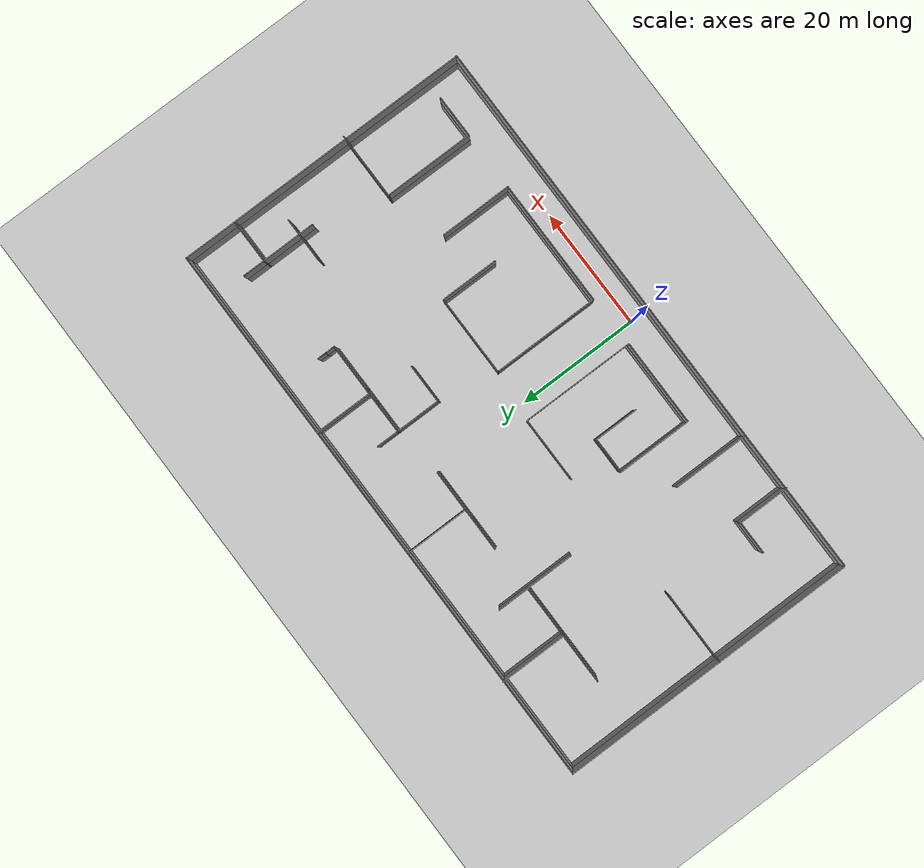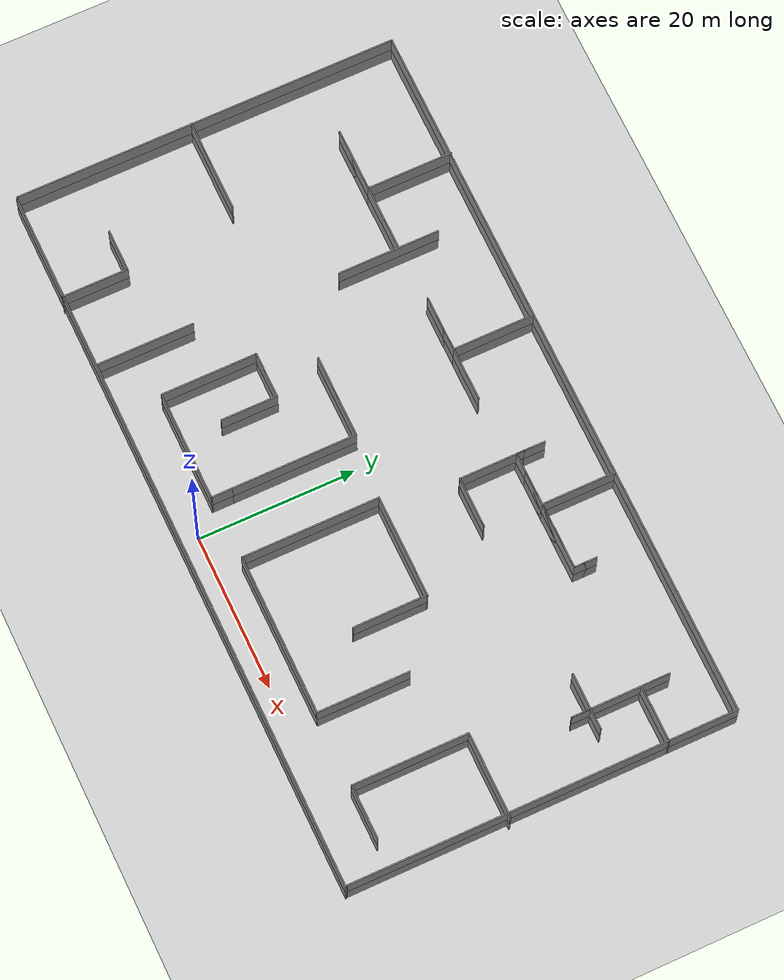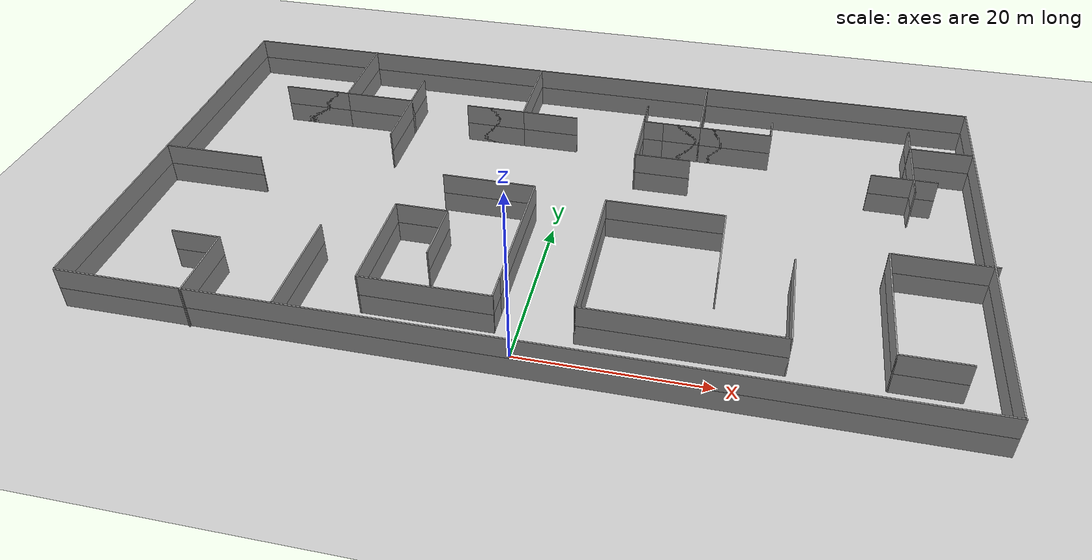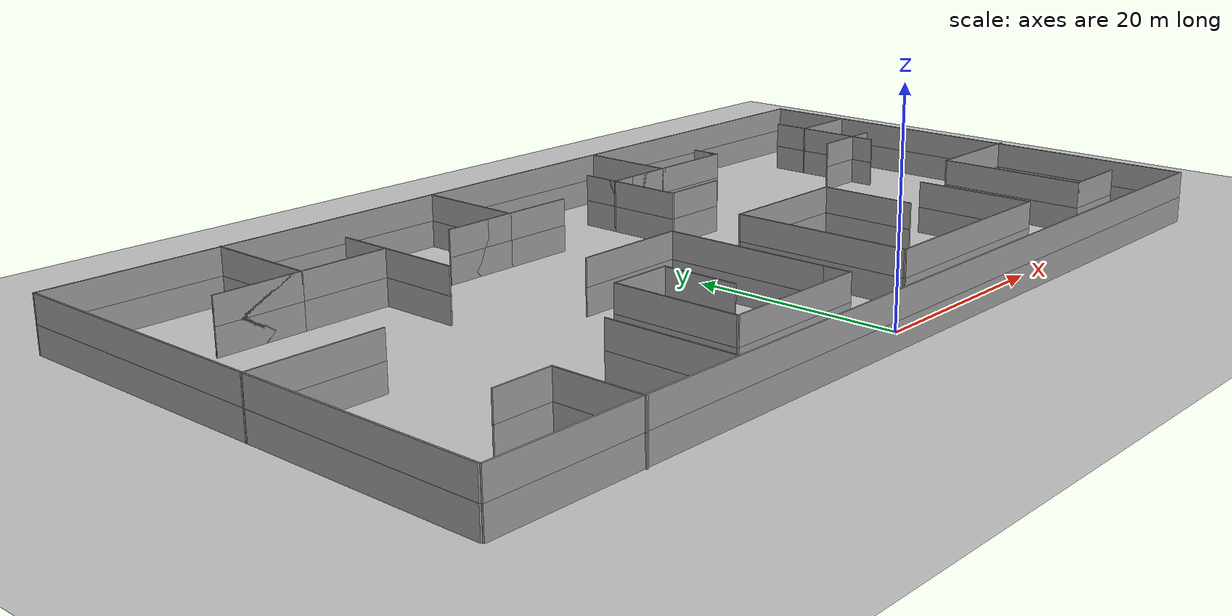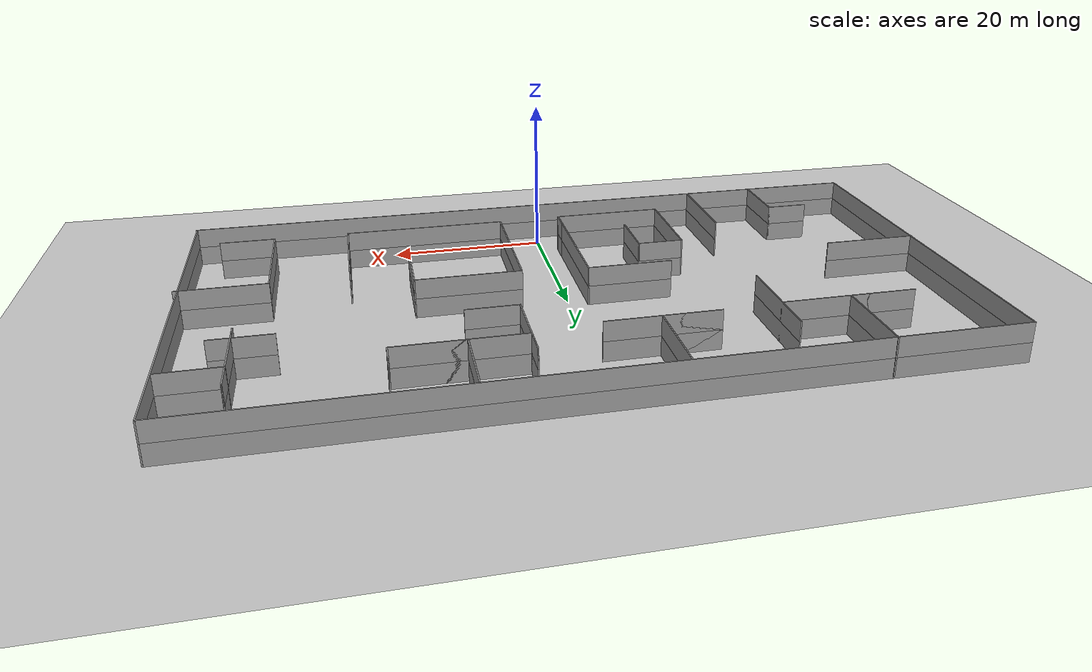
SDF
<sdf version="1.6">
 <world name="default">
  <light name="sun" type="directional">
   <pose>0 0 10 0 -0 0</pose>
   <diffuse>0.8 0.8 0.8 1</diffuse>
   <specular>0.2 0.2 0.2 1</specular>
   <attenuation>
    <range>1000</range>
    <constant>0.9</constant>
    <linear>0.01</linear>
    <quadratic>0.001</quadratic>
   </attenuation>
   <direction>-0.5 0.1 -0.9</direction>
  </light>
  <model name="ground_plane">
   <static>1</static>
   <link name="link">
    <collision name="collision">
     <geometry><plane><normal>0 0 1</normal><size>100 100</size></plane></geometry>
     <surface><friction><ode><mu>100</mu><mu2>50</mu2></ode></friction></surface>
    </collision>
    <visual name="visual">
     <cast_shadows>0</cast_shadows>
     <geometry><plane><normal>0 0 1</normal><size>100 100</size></plane></geometry>
     <material>
      <script><uri>file://media/materials/scripts/gazebo.material</uri><name>Gazebo/Grey</name></script>
     </material>
    </visual>
   </link>
  </model>
  <gravity>0 0 -9.8</gravity>
  <magnetic_field>6e-06 2.3e-05 -4.2e-05</magnetic_field>
  <atmosphere type="adiabatic"/>
  <physics name="default_physics" default="0" type="ode">
   <max_step_size>0.001</max_step_size>
   <real_time_factor>1</real_time_factor>
   <real_time_update_rate>1000</real_time_update_rate>
  </physics>
  <scene><ambient>0.4 0.4 0.4 1</ambient><background>0.7 0.7 0.7 1</background><shadows>1</shadows></scene>
  <audio><device>default</device></audio>
  <spherical_coordinates>
   <surface_model>EARTH_WGS84</surface_model>
   <latitude_deg>0</latitude_deg>
   <longitude_deg>0</longitude_deg>
   <elevation>0</elevation>
   <heading_deg>0</heading_deg>
  </spherical_coordinates>
  <model name="PaperTestRoom">
   <pose>0 22 0 0 -0 0</pose>
   <link name="Wall_10">
    <collision name="Wall_10_Collision">
     <geometry><box><size>11 0.15 2.5</size></box></geometry>
     <pose>0 0 1.25 0 -0 0</pose>
    </collision>
    <visual name="Wall_10_Visual">
     <pose>0 0 1.25 0 -0 0</pose>
     <geometry><box><size>11 0.15 2.5</size></box></geometry>
     <material>
      <script><uri>file://media/materials/scripts/gazebo.material</uri><name>Gazebo/Grey</name></script>
      <ambient>1 1 1 1</ambient>
     </material>
     <meta><layer>0</layer></meta>
    </visual>
    <pose>-30.1932 19.2437 0 0 -0 -1.5708</pose>
   </link>
   <link name="Wall_11">
    <collision name="Wall_11_Collision">
     <geometry><box><size>8.25 0.15 2.5</size></box></geometry>
     <pose>0 0 1.25 0 -0 0</pose>
    </collision>
    <visual name="Wall_11_Visual">
     <pose>0 0 1.25 0 -0 0</pose>
     <geometry><box><size>8.25 0.15 2.5</size></box></geometry>
     <material>
      <script><uri>file://media/materials/scripts/gazebo.material</uri><name>Gazebo/Grey</name></script>
      <ambient>1 1 1 1</ambient>
     </material>
     <meta><layer>0</layer></meta>
    </visual>
    <pose>-34.2432 13.8187 0 0 -0 3.14159</pose>
   </link>
   <link name="Wall_12">
    <collision name="Wall_12_Collision">
     <geometry><box><size>16.75 0.15 2.5</size></box></geometry>
     <pose>0 0 1.25 0 -0 0</pose>
    </collision>
    <visual name="Wall_12_Visual">
     <pose>0 0 1.25 0 -0 0</pose>
     <geometry><box><size>16.75 0.15 2.5</size></box></geometry>
     <material>
      <script><uri>file://media/materials/scripts/gazebo.material</uri><name>Gazebo/Grey</name></script>
      <ambient>1 1 1 1</ambient>
     </material>
     <meta><layer>0</layer></meta>
    </visual>
    <pose>-29.9932 13.8187 0 0 -0 0</pose>
   </link>
   <link name="Wall_13">
    <collision name="Wall_13_Collision">
     <geometry><box><size>5.25 0.15 2.5</size></box></geometry>
     <pose>0 0 1.25 0 -0 0</pose>
    </collision>
    <visual name="Wall_13_Visual">
     <pose>0 0 1.25 0 -0 0</pose>
     <geometry><box><size>5.25 0.15 2.5</size></box></geometry>
     <material>
      <script><uri>file://media/materials/scripts/gazebo.material</uri><name>Gazebo/Grey</name></script>
      <ambient>1 1 1 1</ambient>
     </material>
     <meta><layer>0</layer></meta>
    </visual>
    <pose>-21.6932 16.3687 0 0 -0 1.5708</pose>
   </link>
   <link name="Wall_14">
    <collision name="Wall_14_Collision">
     <geometry><box><size>13 0.15 2.5</size></box></geometry>
     <pose>0 0 1.25 0 -0 0</pose>
    </collision>
    <visual name="Wall_14_Visual">
     <pose>0 0 1.25 0 -0 0</pose>
     <geometry><box><size>13 0.15 2.5</size></box></geometry>
     <material>
      <script><uri>file://media/materials/scripts/gazebo.material</uri><name>Gazebo/Grey</name></script>
      <ambient>1 1 1 1</ambient>
     </material>
     <meta><layer>0</layer></meta>
    </visual>
    <pose>-21.6932 12.4938 0 0 -0 -1.5708</pose>
   </link>
   <link name="Wall_16">
    <collision name="Wall_16_Collision">
     <geometry><box><size>12 0.15 2.5</size></box></geometry>
     <pose>0 0 1.25 0 -0 0</pose>
    </collision>
    <visual name="Wall_16_Visual">
     <pose>0 0 1.25 0 -0 0</pose>
     <geometry><box><size>12 0.15 2.5</size></box></geometry>
     <material>
      <script><uri>file://media/materials/scripts/gazebo.material</uri><name>Gazebo/Grey</name></script>
      <ambient>1 1 1 1</ambient>
     </material>
     <meta><layer>0</layer></meta>
    </visual>
    <pose>-40.777 -1.80235 0 0 -0 0</pose>
   </link>
   <link name="Wall_18">
    <collision name="Wall_18_Collision">
     <geometry><box><size>5.5 0.15 2.5</size></box></geometry>
     <pose>0 0 1.25 0 -0 0</pose>
    </collision>
    <visual name="Wall_18_Visual">
     <pose>0 0 1.25 0 -0 0</pose>
     <geometry><box><size>5.5 0.15 2.5</size></box></geometry>
     <material>
      <script><uri>file://media/materials/scripts/gazebo.material</uri><name>Gazebo/Grey</name></script>
      <ambient>1 1 1 1</ambient>
     </material>
     <meta><layer>0</layer></meta>
    </visual>
    <pose>-35.3456 -16.3188 0 0 -0 0</pose>
   </link>
   <link name="Wall_19">
    <collision name="Wall_19_Collision">
     <geometry><box><size>8.5 0.15 2.5</size></box></geometry>
     <pose>0 0 1.25 0 -0 0</pose>
    </collision>
    <visual name="Wall_19_Visual">
     <pose>0 0 1.25 0 -0 0</pose>
     <geometry><box><size>8.5 0.15 2.5</size></box></geometry>
     <material>
      <script><uri>file://media/materials/scripts/gazebo.material</uri><name>Gazebo/Grey</name></script>
      <ambient>1 1 1 1</ambient>
     </material>
     <meta><layer>0</layer></meta>
    </visual>
    <pose>-32.6706 -20.4938 0 0 -0 -1.5708</pose>
   </link>
   <link name="Wall_21">
    <collision name="Wall_21_Collision">
     <geometry><box><size>12.25 0.15 2.5</size></box></geometry>
     <pose>0 0 1.25 0 -0 0</pose>
    </collision>
    <visual name="Wall_21_Visual">
     <pose>0 0 1.25 0 -0 0</pose>
     <geometry><box><size>12.25 0.15 2.5</size></box></geometry>
     <material>
      <script><uri>file://media/materials/scripts/gazebo.material</uri><name>Gazebo/Grey</name></script>
      <ambient>1 1 1 1</ambient>
     </material>
     <meta><layer>0</layer></meta>
    </visual>
    <pose>-23.0773 -18.2415 0 0 -0 -1.5708</pose>
   </link>
   <link name="Wall_23">
    <collision name="Wall_23_Collision">
     <geometry><box><size>10.75 0.15 2.5</size></box></geometry>
     <pose>0 0 1.25 0 -0 0</pose>
    </collision>
    <visual name="Wall_23_Visual">
     <pose>0 0 1.25 0 -0 0</pose>
     <geometry><box><size>10.75 0.15 2.5</size></box></geometry>
     <material>
      <script><uri>file://media/materials/scripts/gazebo.material</uri><name>Gazebo/Grey</name></script>
      <ambient>1 1 1 1</ambient>
     </material>
     <meta><layer>0</layer></meta>
    </visual>
    <pose>-7.67272 -0.663804 0 0 -0 0</pose>
   </link>
   <link name="Wall_24">
    <collision name="Wall_24_Collision">
     <geometry><box><size>16 0.15 2.5</size></box></geometry>
     <pose>0 0 1.25 0 -0 0</pose>
    </collision>
    <visual name="Wall_24_Visual">
     <pose>0 0 1.25 0 -0 0</pose>
     <geometry><box><size>16 0.15 2.5</size></box></geometry>
     <material>
      <script><uri>file://media/materials/scripts/gazebo.material</uri><name>Gazebo/Grey</name></script>
      <ambient>1 1 1 1</ambient>
     </material>
     <meta><layer>0</layer></meta>
    </visual>
    <pose>-2.37272 -8.5888 0 0 -0 -1.5708</pose>
   </link>
   <link name="Wall_25">
    <collision name="Wall_25_Collision">
     <geometry><box><size>2.75 0.15 2.5</size></box></geometry>
     <pose>0 0 1.25 0 -0 0</pose>
    </collision>
    <visual name="Wall_25_Visual">
     <pose>0 0 1.25 0 -0 0</pose>
     <geometry><box><size>2.75 0.15 2.5</size></box></geometry>
     <material>
      <script><uri>file://media/materials/scripts/gazebo.material</uri><name>Gazebo/Grey</name></script>
      <ambient>1 1 1 1</ambient>
     </material>
     <meta><layer>0</layer></meta>
    </visual>
    <pose>-2.37272 -17.8138 0 0 -0 -1.5708</pose>
   </link>
   <link name="Wall_26">
    <collision name="Wall_26_Collision">
     <geometry><box><size>14.25 0.15 2.5</size></box></geometry>
     <pose>0 0 1.25 0 -0 0</pose>
    </collision>
    <visual name="Wall_26_Visual">
     <pose>0 0 1.25 0 -0 0</pose>
     <geometry><box><size>14.25 0.15 2.5</size></box></geometry>
     <material>
      <script><uri>file://media/materials/scripts/gazebo.material</uri><name>Gazebo/Grey</name></script>
      <ambient>1 1 1 1</ambient>
     </material>
     <meta><layer>0</layer></meta>
    </visual>
    <pose>-9.42272 -19.1138 0 0 -0 3.14159</pose>
   </link>
   <link name="Wall_27">
    <collision name="Wall_27_Collision">
     <geometry><box><size>12.25 0.15 2.5</size></box></geometry>
     <pose>0 0 1.25 0 -0 0</pose>
    </collision>
    <visual name="Wall_27_Visual">
     <pose>0 0 1.25 0 -0 0</pose>
     <geometry><box><size>12.25 0.15 2.5</size></box></geometry>
     <material>
      <script><uri>file://media/materials/scripts/gazebo.material</uri><name>Gazebo/Grey</name></script>
      <ambient>1 1 1 1</ambient>
     </material>
     <meta><layer>0</layer></meta>
    </visual>
    <pose>-16.4727 -13.0638 0 0 -0 1.5708</pose>
   </link>
   <link name="Wall_28">
    <collision name="Wall_28_Collision">
     <geometry><box><size>6 0.15 2.5</size></box></geometry>
     <pose>0 0 1.25 0 -0 0</pose>
    </collision>
    <visual name="Wall_28_Visual">
     <pose>0 0 1.25 0 -0 0</pose>
     <geometry><box><size>6 0.15 2.5</size></box></geometry>
     <material>
      <script><uri>file://media/materials/scripts/gazebo.material</uri><name>Gazebo/Grey</name></script>
      <ambient>1 1 1 1</ambient>
     </material>
     <meta><layer>0</layer></meta>
    </visual>
    <pose>-13.5477 -7.0138 0 0 -0 0</pose>
   </link>
   <link name="Wall_29">
    <collision name="Wall_29_Collision">
     <geometry><box><size>7.25 0.15 2.5</size></box></geometry>
     <pose>0 0 1.25 0 -0 0</pose>
    </collision>
    <visual name="Wall_29_Visual">
     <pose>0 0 1.25 0 -0 0</pose>
     <geometry><box><size>7.25 0.15 2.5</size></box></geometry>
     <material>
      <script><uri>file://media/materials/scripts/gazebo.material</uri><name>Gazebo/Grey</name></script>
      <ambient>1 1 1 1</ambient>
     </material>
     <meta><layer>0</layer></meta>
    </visual>
    <pose>-10.6227 -10.5638 0 0 -0 -1.5708</pose>
   </link>
   <link name="Wall_31">
    <collision name="Wall_31_Collision">
     <geometry><box><size>9.5 0.15 2.5</size></box></geometry>
     <pose>0 0 1.25 0 -0 0</pose>
    </collision>
    <visual name="Wall_31_Visual">
     <pose>0 0 1.25 0 -0 0</pose>
     <geometry><box><size>9.5 0.15 2.5</size></box></geometry>
     <material>
      <script><uri>file://media/materials/scripts/gazebo.material</uri><name>Gazebo/Grey</name></script>
      <ambient>1 1 1 1</ambient>
     </material>
     <meta><layer>0</layer></meta>
    </visual>
    <pose>14.4946 19.8514 0 0 -0 -1.5708</pose>
   </link>
   <link name="Wall_32">
    <collision name="Wall_32_Collision">
     <geometry><box><size>4.5 0.15 2.5</size></box></geometry>
     <pose>0 0 1.25 0 -0 0</pose>
    </collision>
    <visual name="Wall_32_Visual">
     <pose>0 0 1.25 0 -0 0</pose>
     <geometry><box><size>4.5 0.15 2.5</size></box></geometry>
     <material>
      <script><uri>file://media/materials/scripts/gazebo.material</uri><name>Gazebo/Grey</name></script>
      <ambient>1 1 1 1</ambient>
     </material>
     <meta><layer>0</layer></meta>
    </visual>
    <pose>12.3196 15.1764 0 0 -0 3.14159</pose>
   </link>
   <link name="Wall_33">
    <collision name="Wall_33_Collision">
     <geometry><box><size>13 0.15 2.5</size></box></geometry>
     <pose>0 0 1.25 0 -0 0</pose>
    </collision>
    <visual name="Wall_33_Visual">
     <pose>0 0 1.25 0 -0 0</pose>
     <geometry><box><size>13 0.15 2.5</size></box></geometry>
     <material>
      <script><uri>file://media/materials/scripts/gazebo.material</uri><name>Gazebo/Grey</name></script>
      <ambient>1 1 1 1</ambient>
     </material>
     <meta><layer>0</layer></meta>
    </visual>
    <pose>16.5696 15.1764 0 0 -0 0</pose>
   </link>
   <link name="Wall_34">
    <collision name="Wall_34_Collision">
     <geometry><box><size>3 0.15 2.5</size></box></geometry>
     <pose>0 0 1.25 0 -0 0</pose>
    </collision>
    <visual name="Wall_34_Visual">
     <pose>0 0 1.25 0 -0 0</pose>
     <geometry><box><size>3 0.15 2.5</size></box></geometry>
     <material>
      <script><uri>file://media/materials/scripts/gazebo.material</uri><name>Gazebo/Grey</name></script>
      <ambient>1 1 1 1</ambient>
     </material>
     <meta><layer>0</layer></meta>
    </visual>
    <pose>22.9946 16.6014 0 0 -0 1.5708</pose>
   </link>
   <link name="Wall_35">
    <collision name="Wall_35_Collision">
     <geometry><box><size>3 0.15 2.5</size></box></geometry>
     <pose>0 0 1.25 0 -0 0</pose>
    </collision>
    <visual name="Wall_35_Visual">
     <pose>0 0 1.25 0 -0 0</pose>
     <geometry><box><size>3 0.15 2.5</size></box></geometry>
     <material>
      <script><uri>file://media/materials/scripts/gazebo.material</uri><name>Gazebo/Grey</name></script>
      <ambient>1 1 1 1</ambient>
     </material>
     <meta><layer>0</layer></meta>
    </visual>
    <pose>22.9946 16.6014 0 0 -0 -1.5708</pose>
   </link>
   <link name="Wall_36">
    <collision name="Wall_36_Collision">
     <geometry><box><size>15.5 0.15 2.5</size></box></geometry>
     <pose>0 0 1.25 0 -0 0</pose>
    </collision>
    <visual name="Wall_36_Visual">
     <pose>0 0 1.25 0 -0 0</pose>
     <geometry><box><size>15.5 0.15 2.5</size></box></geometry>
     <material>
      <script><uri>file://media/materials/scripts/gazebo.material</uri><name>Gazebo/Grey</name></script>
      <ambient>1 1 1 1</ambient>
     </material>
     <meta><layer>0</layer></meta>
    </visual>
    <pose>15.3196 15.1764 0 0 -0 3.14159</pose>
   </link>
   <link name="Wall_37">
    <collision name="Wall_37_Collision">
     <geometry><box><size>3.75 0.15 2.5</size></box></geometry>
     <pose>0 0 1.25 0 -0 0</pose>
    </collision>
    <visual name="Wall_37_Visual">
     <pose>0 0 1.25 0 -0 0</pose>
     <geometry><box><size>3.75 0.15 2.5</size></box></geometry>
     <material>
      <script><uri>file://media/materials/scripts/gazebo.material</uri><name>Gazebo/Grey</name></script>
      <ambient>1 1 1 1</ambient>
     </material>
     <meta><layer>0</layer></meta>
    </visual>
    <pose>7.6446 16.9764 0 0 -0 1.5708</pose>
   </link>
   <link name="Wall_38">
    <collision name="Wall_38_Collision">
     <geometry><box><size>11 0.15 2.5</size></box></geometry>
     <pose>0 0 1.25 0 -0 0</pose>
    </collision>
    <visual name="Wall_38_Visual">
     <pose>0 0 1.25 0 -0 0</pose>
     <geometry><box><size>11 0.15 2.5</size></box></geometry>
     <material>
      <script><uri>file://media/materials/scripts/gazebo.material</uri><name>Gazebo/Grey</name></script>
      <ambient>1 1 1 1</ambient>
     </material>
     <meta><layer>0</layer></meta>
    </visual>
    <pose>7.6446 13.3514 0 0 -0 -1.5708</pose>
   </link>
   <link name="Wall_39">
    <collision name="Wall_39_Collision">
     <geometry><box><size>6.5 0.15 2.5</size></box></geometry>
     <pose>0 0 1.25 0 -0 0</pose>
    </collision>
    <visual name="Wall_39_Visual">
     <pose>0 0 1.25 0 -0 0</pose>
     <geometry><box><size>6.5 0.15 2.5</size></box></geometry>
     <material>
      <script><uri>file://media/materials/scripts/gazebo.material</uri><name>Gazebo/Grey</name></script>
      <ambient>1 1 1 1</ambient>
     </material>
     <meta><layer>0</layer></meta>
    </visual>
    <pose>10.8196 7.92643 0 0 -0 0</pose>
   </link>
   <link name="Wall_41">
    <collision name="Wall_41_Collision">
     <geometry><box><size>9.5 0.15 2.5</size></box></geometry>
     <pose>0 0 1.25 0 -0 0</pose>
    </collision>
    <visual name="Wall_41_Visual">
     <pose>0 0 1.25 0 -0 0</pose>
     <geometry><box><size>9.5 0.15 2.5</size></box></geometry>
     <material>
      <script><uri>file://media/materials/scripts/gazebo.material</uri><name>Gazebo/Grey</name></script>
      <ambient>1 1 1 1</ambient>
     </material>
     <meta><layer>0</layer></meta>
    </visual>
    <pose>18.9064 -6.23568 0 0 -0 1.5708</pose>
   </link>
   <link name="Wall_42">
    <collision name="Wall_42_Collision">
     <geometry><box><size>13.25 0.15 2.5</size></box></geometry>
     <pose>0 0 1.25 0 -0 0</pose>
    </collision>
    <visual name="Wall_42_Visual">
     <pose>0 0 1.25 0 -0 0</pose>
     <geometry><box><size>13.25 0.15 2.5</size></box></geometry>
     <material>
      <script><uri>file://media/materials/scripts/gazebo.material</uri><name>Gazebo/Grey</name></script>
      <ambient>1 1 1 1</ambient>
     </material>
     <meta><layer>0</layer></meta>
    </visual>
    <pose>12.3564 -1.56068 0 0 -0 3.14159</pose>
   </link>
   <link name="Wall_43">
    <collision name="Wall_43_Collision">
     <geometry><box><size>17.5 0.15 2.5</size></box></geometry>
     <pose>0 0 1.25 0 -0 0</pose>
    </collision>
    <visual name="Wall_43_Visual">
     <pose>0 0 1.25 0 -0 0</pose>
     <geometry><box><size>17.5 0.15 2.5</size></box></geometry>
     <material>
      <script><uri>file://media/materials/scripts/gazebo.material</uri><name>Gazebo/Grey</name></script>
      <ambient>1 1 1 1</ambient>
     </material>
     <meta><layer>0</layer></meta>
    </visual>
    <pose>5.80645 -10.2357 0 0 -0 -1.5708</pose>
   </link>
   <link name="Wall_44">
    <collision name="Wall_44_Collision">
     <geometry><box><size>20.75 0.15 2.5</size></box></geometry>
     <pose>0 0 1.25 0 -0 0</pose>
    </collision>
    <visual name="Wall_44_Visual">
     <pose>0 0 1.25 0 -0 0</pose>
     <geometry><box><size>20.75 0.15 2.5</size></box></geometry>
     <material>
      <script><uri>file://media/materials/scripts/gazebo.material</uri><name>Gazebo/Grey</name></script>
      <ambient>1 1 1 1</ambient>
     </material>
     <meta><layer>0</layer></meta>
    </visual>
    <pose>16.1064 -18.9107 0 0 -0 0</pose>
   </link>
   <link name="Wall_45">
    <collision name="Wall_45_Collision">
     <geometry><box><size>11.75 0.15 2.5</size></box></geometry>
     <pose>0 0 1.25 0 -0 0</pose>
    </collision>
    <visual name="Wall_45_Visual">
     <pose>0 0 1.25 0 -0 0</pose>
     <geometry><box><size>11.75 0.15 2.5</size></box></geometry>
     <material>
      <script><uri>file://media/materials/scripts/gazebo.material</uri><name>Gazebo/Grey</name></script>
      <ambient>1 1 1 1</ambient>
     </material>
     <meta><layer>0</layer></meta>
    </visual>
    <pose>26.4064 -13.1107 0 0 -0 1.5708</pose>
   </link>
   <link name="Wall_58">
    <collision name="Wall_58_Collision">
     <geometry><box><size>10.5 0.15 2.5</size></box></geometry>
     <pose>0 0 1.25 0 -0 0</pose>
    </collision>
    <visual name="Wall_58_Visual">
     <pose>0 0 1.25 0 -0 0</pose>
     <geometry><box><size>10.5 0.15 2.5</size></box></geometry>
     <material>
      <script><uri>file://media/materials/scripts/gazebo.material</uri><name>Gazebo/Grey</name></script>
      <ambient>1 1 1 1</ambient>
     </material>
     <meta><layer>0</layer></meta>
    </visual>
    <pose>-7.28001 19.3514 0 0 -0 -1.5708</pose>
   </link>
   <link name="Wall_59">
    <collision name="Wall_59_Collision">
     <geometry><box><size>7.25 0.15 2.5</size></box></geometry>
     <pose>0 0 1.25 0 -0 0</pose>
    </collision>
    <visual name="Wall_59_Visual">
     <pose>0 0 1.25 0 -0 0</pose>
     <geometry><box><size>7.25 0.15 2.5</size></box></geometry>
     <material>
      <script><uri>file://media/materials/scripts/gazebo.material</uri><name>Gazebo/Grey</name></script>
      <ambient>1 1 1 1</ambient>
     </material>
     <meta><layer>0</layer></meta>
    </visual>
    <pose>-10.83 14.1764 0 0 -0 3.14159</pose>
   </link>
   <link name="Wall_60">
    <collision name="Wall_60_Collision">
     <geometry><box><size>14 0.15 2.5</size></box></geometry>
     <pose>0 0 1.25 0 -0 0</pose>
    </collision>
    <visual name="Wall_60_Visual">
     <pose>0 0 1.25 0 -0 0</pose>
     <geometry><box><size>14 0.15 2.5</size></box></geometry>
     <material>
      <script><uri>file://media/materials/scripts/gazebo.material</uri><name>Gazebo/Grey</name></script>
      <ambient>1 1 1 1</ambient>
     </material>
     <meta><layer>0</layer></meta>
    </visual>
    <pose>-7.45501 14.1764 0 0 -0 0</pose>
   </link>
   <link name="Wall_63">
    <collision name="Wall_63_Collision">
     <geometry><box><size>49 0.15 2.5</size></box></geometry>
     <pose>0 0 1.25 0 -0 0</pose>
    </collision>
    <visual name="Wall_63_Visual">
     <pose>0 0 1.25 0 -0 0</pose>
     <geometry><box><size>49 0.15 2.5</size></box></geometry>
     <material>
      <script><uri>file://media/materials/scripts/gazebo.material</uri><name>Gazebo/Grey</name></script>
      <ambient>1 1 1 1</ambient>
     </material>
     <meta><layer>0</layer></meta>
    </visual>
    <pose>46.193 0.146933 0 0 -0 1.5708</pose>
   </link>
   <link name="Wall_65">
    <collision name="Wall_65_Collision">
     <geometry><box><size>7.25 0.15 2.5</size></box></geometry>
     <pose>0 0 1.25 0 -0 0</pose>
    </collision>
    <visual name="Wall_65_Visual">
     <pose>0 0 1.25 0 -0 0</pose>
     <geometry><box><size>7.25 0.15 2.5</size></box></geometry>
     <material>
      <script><uri>file://media/materials/scripts/gazebo.material</uri><name>Gazebo/Grey</name></script>
      <ambient>1 1 1 1</ambient>
     </material>
     <meta><layer>0</layer></meta>
    </visual>
    <pose>42.643 15.82 0 0 -0 3.14159</pose>
   </link>
   <link name="Wall_66">
    <collision name="Wall_66_Collision">
     <geometry><box><size>3.75 0.15 2.5</size></box></geometry>
     <pose>0 0 1.25 0 -0 0</pose>
    </collision>
    <visual name="Wall_66_Visual">
     <pose>0 0 1.25 0 -0 0</pose>
     <geometry><box><size>3.75 0.15 2.5</size></box></geometry>
     <material>
      <script><uri>file://media/materials/scripts/gazebo.material</uri><name>Gazebo/Grey</name></script>
      <ambient>1 1 1 1</ambient>
     </material>
     <meta><layer>0</layer></meta>
    </visual>
    <pose>39.093 17.6199 0 0 -0 1.5708</pose>
   </link>
   <link name="Wall_67">
    <collision name="Wall_67_Collision">
     <geometry><box><size>12.5 0.15 2.5</size></box></geometry>
     <pose>0 0 1.25 0 -0 0</pose>
    </collision>
    <visual name="Wall_67_Visual">
     <pose>0 0 1.25 0 -0 0</pose>
     <geometry><box><size>12.5 0.15 2.5</size></box></geometry>
     <material>
      <script><uri>file://media/materials/scripts/gazebo.material</uri><name>Gazebo/Grey</name></script>
      <ambient>1 1 1 1</ambient>
     </material>
     <meta><layer>0</layer></meta>
    </visual>
    <pose>39.093 13.2449 0 0 -0 -1.5708</pose>
   </link>
   <link name="Wall_68">
    <collision name="Wall_68_Collision">
     <geometry><box><size>2.5 0.15 2.5</size></box></geometry>
     <pose>0 0 1.25 0 -0 0</pose>
    </collision>
    <visual name="Wall_68_Visual">
     <pose>0 0 1.25 0 -0 0</pose>
     <geometry><box><size>2.5 0.15 2.5</size></box></geometry>
     <material>
      <script><uri>file://media/materials/scripts/gazebo.material</uri><name>Gazebo/Grey</name></script>
      <ambient>1 1 1 1</ambient>
     </material>
     <meta><layer>0</layer></meta>
    </visual>
    <pose>39.093 8.24495 0 0 -0 1.5708</pose>
   </link>
   <link name="Wall_71">
    <collision name="Wall_71_Collision">
     <geometry><box><size>4.75 0.15 2.5</size></box></geometry>
     <pose>0 0 1.25 0 -0 0</pose>
    </collision>
    <visual name="Wall_71_Visual">
     <pose>0 0 1.25 0 -0 0</pose>
     <geometry><box><size>4.75 0.15 2.5</size></box></geometry>
     <material>
      <script><uri>file://media/materials/scripts/gazebo.material</uri><name>Gazebo/Grey</name></script>
      <ambient>1 1 1 1</ambient>
     </material>
     <meta><layer>0</layer></meta>
    </visual>
    <pose>36.793 9.41995 0 0 -0 3.14159</pose>
   </link>
   <link name="Wall_73">
    <collision name="Wall_73_Collision">
     <geometry><box><size>2.75 0.15 2.5</size></box></geometry>
     <pose>0 0 1.25 0 -0 0</pose>
    </collision>
    <visual name="Wall_73_Visual">
     <pose>0 0 1.25 0 -0 0</pose>
     <geometry><box><size>2.75 0.15 2.5</size></box></geometry>
     <material>
      <script><uri>file://media/materials/scripts/gazebo.material</uri><name>Gazebo/Grey</name></script>
      <ambient>1 1 1 1</ambient>
     </material>
     <meta><layer>0</layer></meta>
    </visual>
    <pose>40.393 9.41995 0 0 -0 0</pose>
   </link>
   <link name="Wall_75">
    <collision name="Wall_75_Collision">
     <geometry><box><size>11 0.15 2.5</size></box></geometry>
     <pose>0 0 1.25 0 -0 0</pose>
    </collision>
    <visual name="Wall_75_Visual">
     <pose>0 0 1.25 0 -0 0</pose>
     <geometry><box><size>11 0.15 2.5</size></box></geometry>
     <material>
      <script><uri>file://media/materials/scripts/gazebo.material</uri><name>Gazebo/Grey</name></script>
      <ambient>1 1 1 1</ambient>
     </material>
     <meta><layer>0</layer></meta>
    </visual>
    <pose>41.277 -4.3323 0 0 -0 3.14159</pose>
   </link>
   <link name="Wall_76">
    <collision name="Wall_76_Collision">
     <geometry><box><size>14.75 0.15 2.5</size></box></geometry>
     <pose>0 0 1.25 0 -0 0</pose>
    </collision>
    <visual name="Wall_76_Visual">
     <pose>0 0 1.25 0 -0 0</pose>
     <geometry><box><size>14.75 0.15 2.5</size></box></geometry>
     <material>
      <script><uri>file://media/materials/scripts/gazebo.material</uri><name>Gazebo/Grey</name></script>
      <ambient>1 1 1 1</ambient>
     </material>
     <meta><layer>0</layer></meta>
    </visual>
    <pose>35.852 -11.6323 0 0 -0 -1.5708</pose>
   </link>
   <link name="Wall_77">
    <collision name="Wall_77_Collision">
     <geometry><box><size>7 0.15 2.5</size></box></geometry>
     <pose>0 0 1.25 0 -0 0</pose>
    </collision>
    <visual name="Wall_77_Visual">
     <pose>0 0 1.25 0 -0 0</pose>
     <geometry><box><size>7 0.15 2.5</size></box></geometry>
     <material>
      <script><uri>file://media/materials/scripts/gazebo.material</uri><name>Gazebo/Grey</name></script>
      <ambient>1 1 1 1</ambient>
     </material>
     <meta><layer>0</layer></meta>
    </visual>
    <pose>39.277 -18.9323 0 0 -0 0</pose>
   </link>
   <link name="Wall_8">
    <collision name="Wall_8_Collision">
     <geometry><box><size>49 0.15 2.5</size></box></geometry>
     <pose>0 0 1.25 0 -0 0</pose>
    </collision>
    <visual name="Wall_8_Visual">
     <pose>0 0 1.25 0 -0 0</pose>
     <geometry><box><size>49 0.15 2.5</size></box></geometry>
     <material>
      <script><uri>file://media/materials/scripts/gazebo.material</uri><name>Gazebo/Grey</name></script>
      <ambient>1 1 1 1</ambient>
     </material>
     <meta><layer>0</layer></meta>
    </visual>
    <pose>-46.6674 0.136456 0 0 -0 -1.5708</pose>
   </link>
   <link name="Wall_80">
    <collision name="Wall_80_Collision">
     <geometry><box><size>93 0.15 2.5</size></box></geometry>
     <pose>0 0 1.25 0 -0 0</pose>
    </collision>
    <visual name="Wall_80_Visual">
     <pose>0 0 1.25 0 -0 0</pose>
     <geometry><box><size>93 0.15 2.5</size></box></geometry>
     <material>
      <script><uri>file://media/materials/scripts/gazebo.material</uri><name>Gazebo/Grey</name></script>
      <ambient>1 1 1 1</ambient>
     </material>
     <meta><layer>0</layer></meta>
    </visual>
    <pose>-0.242385 24.5615 0 0 -0 0</pose>
   </link>
   <link name="Wall_82">
    <collision name="Wall_82_Collision">
     <geometry><box><size>93 0.15 2.5</size></box></geometry>
     <pose>0 0 1.25 0 -0 0</pose>
    </collision>
    <visual name="Wall_82_Visual">
     <pose>0 0 1.25 0 -0 0</pose>
     <geometry><box><size>93 0.15 2.5</size></box></geometry>
     <material>
      <script><uri>file://media/materials/scripts/gazebo.material</uri><name>Gazebo/Grey</name></script>
      <ambient>1 1 1 1</ambient>
     </material>
     <meta><layer>0</layer></meta>
    </visual>
    <pose>-0.146578 -24.517 0 0 -0 0</pose>
   </link>
   <static>1</static>
  </model>
  <model name="PaperTestRoom_clone">
   <pose>0 22 2.5 0 -0 0</pose>
   <link name="Wall_10">
    <collision name="Wall_10_Collision">
     <geometry><box><size>11 0.15 2.5</size></box></geometry>
     <pose>0 0 1.25 0 -0 0</pose>
    </collision>
    <visual name="Wall_10_Visual">
     <pose>0 0 1.25 0 -0 0</pose>
     <geometry><box><size>11 0.15 2.5</size></box></geometry>
     <material>
      <script><uri>file://media/materials/scripts/gazebo.material</uri><name>Gazebo/Grey</name></script>
      <ambient>1 1 1 1</ambient>
     </material>
     <meta><layer>0</layer></meta>
    </visual>
    <pose>-30.1932 19.2437 0 0 -0 -1.5708</pose>
   </link>
   <link name="Wall_11">
    <collision name="Wall_11_Collision">
     <geometry><box><size>8.25 0.15 2.5</size></box></geometry>
     <pose>0 0 1.25 0 -0 0</pose>
    </collision>
    <visual name="Wall_11_Visual">
     <pose>0 0 1.25 0 -0 0</pose>
     <geometry><box><size>8.25 0.15 2.5</size></box></geometry>
     <material>
      <script><uri>file://media/materials/scripts/gazebo.material</uri><name>Gazebo/Grey</name></script>
      <ambient>1 1 1 1</ambient>
     </material>
     <meta><layer>0</layer></meta>
    </visual>
    <pose>-34.2432 13.8187 0 0 -0 3.14159</pose>
   </link>
   <link name="Wall_12">
    <collision name="Wall_12_Collision">
     <geometry><box><size>16.75 0.15 2.5</size></box></geometry>
     <pose>0 0 1.25 0 -0 0</pose>
    </collision>
    <visual name="Wall_12_Visual">
     <pose>0 0 1.25 0 -0 0</pose>
     <geometry><box><size>16.75 0.15 2.5</size></box></geometry>
     <material>
      <script><uri>file://media/materials/scripts/gazebo.material</uri><name>Gazebo/Grey</name></script>
      <ambient>1 1 1 1</ambient>
     </material>
     <meta><layer>0</layer></meta>
    </visual>
    <pose>-29.9932 13.8187 0 0 -0 0</pose>
   </link>
   <link name="Wall_13">
    <collision name="Wall_13_Collision">
     <geometry><box><size>5.25 0.15 2.5</size></box></geometry>
     <pose>0 0 1.25 0 -0 0</pose>
    </collision>
    <visual name="Wall_13_Visual">
     <pose>0 0 1.25 0 -0 0</pose>
     <geometry><box><size>5.25 0.15 2.5</size></box></geometry>
     <material>
      <script><uri>file://media/materials/scripts/gazebo.material</uri><name>Gazebo/Grey</name></script>
      <ambient>1 1 1 1</ambient>
     </material>
     <meta><layer>0</layer></meta>
    </visual>
    <pose>-21.6932 16.3687 0 0 -0 1.5708</pose>
   </link>
   <link name="Wall_14">
    <collision name="Wall_14_Collision">
     <geometry><box><size>13 0.15 2.5</size></box></geometry>
     <pose>0 0 1.25 0 -0 0</pose>
    </collision>
    <visual name="Wall_14_Visual">
     <pose>0 0 1.25 0 -0 0</pose>
     <geometry><box><size>13 0.15 2.5</size></box></geometry>
     <material>
      <script><uri>file://media/materials/scripts/gazebo.material</uri><name>Gazebo/Grey</name></script>
      <ambient>1 1 1 1</ambient>
     </material>
     <meta><layer>0</layer></meta>
    </visual>
    <pose>-21.6932 12.4938 0 0 -0 -1.5708</pose>
   </link>
   <link name="Wall_16">
    <collision name="Wall_16_Collision">
     <geometry><box><size>12 0.15 2.5</size></box></geometry>
     <pose>0 0 1.25 0 -0 0</pose>
    </collision>
    <visual name="Wall_16_Visual">
     <pose>0 0 1.25 0 -0 0</pose>
     <geometry><box><size>12 0.15 2.5</size></box></geometry>
     <material>
      <script><uri>file://media/materials/scripts/gazebo.material</uri><name>Gazebo/Grey</name></script>
      <ambient>1 1 1 1</ambient>
     </material>
     <meta><layer>0</layer></meta>
    </visual>
    <pose>-40.777 -1.80235 0 0 -0 0</pose>
   </link>
   <link name="Wall_18">
    <collision name="Wall_18_Collision">
     <geometry><box><size>5.5 0.15 2.5</size></box></geometry>
     <pose>0 0 1.25 0 -0 0</pose>
    </collision>
    <visual name="Wall_18_Visual">
     <pose>0 0 1.25 0 -0 0</pose>
     <geometry><box><size>5.5 0.15 2.5</size></box></geometry>
     <material>
      <script><uri>file://media/materials/scripts/gazebo.material</uri><name>Gazebo/Grey</name></script>
      <ambient>1 1 1 1</ambient>
     </material>
     <meta><layer>0</layer></meta>
    </visual>
    <pose>-35.3456 -16.3188 0 0 -0 0</pose>
   </link>
   <link name="Wall_19">
    <collision name="Wall_19_Collision">
     <geometry><box><size>8.5 0.15 2.5</size></box></geometry>
     <pose>0 0 1.25 0 -0 0</pose>
    </collision>
    <visual name="Wall_19_Visual">
     <pose>0 0 1.25 0 -0 0</pose>
     <geometry><box><size>8.5 0.15 2.5</size></box></geometry>
     <material>
      <script><uri>file://media/materials/scripts/gazebo.material</uri><name>Gazebo/Grey</name></script>
      <ambient>1 1 1 1</ambient>
     </material>
     <meta><layer>0</layer></meta>
    </visual>
    <pose>-32.6706 -20.4938 0 0 -0 -1.5708</pose>
   </link>
   <link name="Wall_21">
    <collision name="Wall_21_Collision">
     <geometry><box><size>12.25 0.15 2.5</size></box></geometry>
     <pose>0 0 1.25 0 -0 0</pose>
    </collision>
    <visual name="Wall_21_Visual">
     <pose>0 0 1.25 0 -0 0</pose>
     <geometry><box><size>12.25 0.15 2.5</size></box></geometry>
     <material>
      <script><uri>file://media/materials/scripts/gazebo.material</uri><name>Gazebo/Grey</name></script>
      <ambient>1 1 1 1</ambient>
     </material>
     <meta><layer>0</layer></meta>
    </visual>
    <pose>-23.0773 -18.2415 0 0 -0 -1.5708</pose>
   </link>
   <link name="Wall_23">
    <collision name="Wall_23_Collision">
     <geometry><box><size>10.75 0.15 2.5</size></box></geometry>
     <pose>0 0 1.25 0 -0 0</pose>
    </collision>
    <visual name="Wall_23_Visual">
     <pose>0 0 1.25 0 -0 0</pose>
     <geometry><box><size>10.75 0.15 2.5</size></box></geometry>
     <material>
      <script><uri>file://media/materials/scripts/gazebo.material</uri><name>Gazebo/Grey</name></script>
      <ambient>1 1 1 1</ambient>
     </material>
     <meta><layer>0</layer></meta>
    </visual>
    <pose>-7.67272 -0.663804 0 0 -0 0</pose>
   </link>
   <link name="Wall_24">
    <collision name="Wall_24_Collision">
     <geometry><box><size>16 0.15 2.5</size></box></geometry>
     <pose>0 0 1.25 0 -0 0</pose>
    </collision>
    <visual name="Wall_24_Visual">
     <pose>0 0 1.25 0 -0 0</pose>
     <geometry><box><size>16 0.15 2.5</size></box></geometry>
     <material>
      <script><uri>file://media/materials/scripts/gazebo.material</uri><name>Gazebo/Grey</name></script>
      <ambient>1 1 1 1</ambient>
     </material>
     <meta><layer>0</layer></meta>
    </visual>
    <pose>-2.37272 -8.5888 0 0 -0 -1.5708</pose>
   </link>
   <link name="Wall_25">
    <collision name="Wall_25_Collision">
     <geometry><box><size>2.75 0.15 2.5</size></box></geometry>
     <pose>0 0 1.25 0 -0 0</pose>
    </collision>
    <visual name="Wall_25_Visual">
     <pose>0 0 1.25 0 -0 0</pose>
     <geometry><box><size>2.75 0.15 2.5</size></box></geometry>
     <material>
      <script><uri>file://media/materials/scripts/gazebo.material</uri><name>Gazebo/Grey</name></script>
      <ambient>1 1 1 1</ambient>
     </material>
     <meta><layer>0</layer></meta>
    </visual>
    <pose>-2.37272 -17.8138 0 0 -0 -1.5708</pose>
   </link>
   <link name="Wall_26">
    <collision name="Wall_26_Collision">
     <geometry><box><size>14.25 0.15 2.5</size></box></geometry>
     <pose>0 0 1.25 0 -0 0</pose>
    </collision>
    <visual name="Wall_26_Visual">
     <pose>0 0 1.25 0 -0 0</pose>
     <geometry><box><size>14.25 0.15 2.5</size></box></geometry>
     <material>
      <script><uri>file://media/materials/scripts/gazebo.material</uri><name>Gazebo/Grey</name></script>
      <ambient>1 1 1 1</ambient>
     </material>
     <meta><layer>0</layer></meta>
    </visual>
    <pose>-9.42272 -19.1138 0 0 -0 3.14159</pose>
   </link>
   <link name="Wall_27">
    <collision name="Wall_27_Collision">
     <geometry><box><size>12.25 0.15 2.5</size></box></geometry>
     <pose>0 0 1.25 0 -0 0</pose>
    </collision>
    <visual name="Wall_27_Visual">
     <pose>0 0 1.25 0 -0 0</pose>
     <geometry><box><size>12.25 0.15 2.5</size></box></geometry>
     <material>
      <script><uri>file://media/materials/scripts/gazebo.material</uri><name>Gazebo/Grey</name></script>
      <ambient>1 1 1 1</ambient>
     </material>
     <meta><layer>0</layer></meta>
    </visual>
    <pose>-16.4727 -13.0638 0 0 -0 1.5708</pose>
   </link>
   <link name="Wall_28">
    <collision name="Wall_28_Collision">
     <geometry><box><size>6 0.15 2.5</size></box></geometry>
     <pose>0 0 1.25 0 -0 0</pose>
    </collision>
    <visual name="Wall_28_Visual">
     <pose>0 0 1.25 0 -0 0</pose>
     <geometry><box><size>6 0.15 2.5</size></box></geometry>
     <material>
      <script><uri>file://media/materials/scripts/gazebo.material</uri><name>Gazebo/Grey</name></script>
      <ambient>1 1 1 1</ambient>
     </material>
     <meta><layer>0</layer></meta>
    </visual>
    <pose>-13.5477 -7.0138 0 0 -0 0</pose>
   </link>
   <link name="Wall_29">
    <collision name="Wall_29_Collision">
     <geometry><box><size>7.25 0.15 2.5</size></box></geometry>
     <pose>0 0 1.25 0 -0 0</pose>
    </collision>
    <visual name="Wall_29_Visual">
     <pose>0 0 1.25 0 -0 0</pose>
     <geometry><box><size>7.25 0.15 2.5</size></box></geometry>
     <material>
      <script><uri>file://media/materials/scripts/gazebo.material</uri><name>Gazebo/Grey</name></script>
      <ambient>1 1 1 1</ambient>
     </material>
     <meta><layer>0</layer></meta>
    </visual>
    <pose>-10.6227 -10.5638 0 0 -0 -1.5708</pose>
   </link>
   <link name="Wall_31">
    <collision name="Wall_31_Collision">
     <geometry><box><size>9.5 0.15 2.5</size></box></geometry>
     <pose>0 0 1.25 0 -0 0</pose>
    </collision>
    <visual name="Wall_31_Visual">
     <pose>0 0 1.25 0 -0 0</pose>
     <geometry><box><size>9.5 0.15 2.5</size></box></geometry>
     <material>
      <script><uri>file://media/materials/scripts/gazebo.material</uri><name>Gazebo/Grey</name></script>
      <ambient>1 1 1 1</ambient>
     </material>
     <meta><layer>0</layer></meta>
    </visual>
    <pose>14.4946 19.8514 0 0 -0 -1.5708</pose>
   </link>
   <link name="Wall_32">
    <collision name="Wall_32_Collision">
     <geometry><box><size>4.5 0.15 2.5</size></box></geometry>
     <pose>0 0 1.25 0 -0 0</pose>
    </collision>
    <visual name="Wall_32_Visual">
     <pose>0 0 1.25 0 -0 0</pose>
     <geometry><box><size>4.5 0.15 2.5</size></box></geometry>
     <material>
      <script><uri>file://media/materials/scripts/gazebo.material</uri><name>Gazebo/Grey</name></script>
      <ambient>1 1 1 1</ambient>
     </material>
     <meta><layer>0</layer></meta>
    </visual>
    <pose>12.3196 15.1764 0 0 -0 3.14159</pose>
   </link>
   <link name="Wall_33">
    <collision name="Wall_33_Collision">
     <geometry><box><size>13 0.15 2.5</size></box></geometry>
     <pose>0 0 1.25 0 -0 0</pose>
    </collision>
    <visual name="Wall_33_Visual">
     <pose>0 0 1.25 0 -0 0</pose>
     <geometry><box><size>13 0.15 2.5</size></box></geometry>
     <material>
      <script><uri>file://media/materials/scripts/gazebo.material</uri><name>Gazebo/Grey</name></script>
      <ambient>1 1 1 1</ambient>
     </material>
     <meta><layer>0</layer></meta>
    </visual>
    <pose>16.5696 15.1764 0 0 -0 0</pose>
   </link>
   <link name="Wall_34">
    <collision name="Wall_34_Collision">
     <geometry><box><size>3 0.15 2.5</size></box></geometry>
     <pose>0 0 1.25 0 -0 0</pose>
    </collision>
    <visual name="Wall_34_Visual">
     <pose>0 0 1.25 0 -0 0</pose>
     <geometry><box><size>3 0.15 2.5</size></box></geometry>
     <material>
      <script><uri>file://media/materials/scripts/gazebo.material</uri><name>Gazebo/Grey</name></script>
      <ambient>1 1 1 1</ambient>
     </material>
     <meta><layer>0</layer></meta>
    </visual>
    <pose>22.9946 16.6014 0 0 -0 1.5708</pose>
   </link>
   <link name="Wall_35">
    <collision name="Wall_35_Collision">
     <geometry><box><size>3 0.15 2.5</size></box></geometry>
     <pose>0 0 1.25 0 -0 0</pose>
    </collision>
    <visual name="Wall_35_Visual">
     <pose>0 0 1.25 0 -0 0</pose>
     <geometry><box><size>3 0.15 2.5</size></box></geometry>
     <material>
      <script><uri>file://media/materials/scripts/gazebo.material</uri><name>Gazebo/Grey</name></script>
      <ambient>1 1 1 1</ambient>
     </material>
     <meta><layer>0</layer></meta>
    </visual>
    <pose>22.9946 16.6014 0 0 -0 -1.5708</pose>
   </link>
   <link name="Wall_36">
    <collision name="Wall_36_Collision">
     <geometry><box><size>15.5 0.15 2.5</size></box></geometry>
     <pose>0 0 1.25 0 -0 0</pose>
    </collision>
    <visual name="Wall_36_Visual">
     <pose>0 0 1.25 0 -0 0</pose>
     <geometry><box><size>15.5 0.15 2.5</size></box></geometry>
     <material>
      <script><uri>file://media/materials/scripts/gazebo.material</uri><name>Gazebo/Grey</name></script>
      <ambient>1 1 1 1</ambient>
     </material>
     <meta><layer>0</layer></meta>
    </visual>
    <pose>15.3196 15.1764 0 0 -0 3.14159</pose>
   </link>
   <link name="Wall_37">
    <collision name="Wall_37_Collision">
     <geometry><box><size>3.75 0.15 2.5</size></box></geometry>
     <pose>0 0 1.25 0 -0 0</pose>
    </collision>
    <visual name="Wall_37_Visual">
     <pose>0 0 1.25 0 -0 0</pose>
     <geometry><box><size>3.75 0.15 2.5</size></box></geometry>
     <material>
      <script><uri>file://media/materials/scripts/gazebo.material</uri><name>Gazebo/Grey</name></script>
      <ambient>1 1 1 1</ambient>
     </material>
     <meta><layer>0</layer></meta>
    </visual>
    <pose>7.6446 16.9764 0 0 -0 1.5708</pose>
   </link>
   <link name="Wall_38">
    <collision name="Wall_38_Collision">
     <geometry><box><size>11 0.15 2.5</size></box></geometry>
     <pose>0 0 1.25 0 -0 0</pose>
    </collision>
    <visual name="Wall_38_Visual">
     <pose>0 0 1.25 0 -0 0</pose>
     <geometry><box><size>11 0.15 2.5</size></box></geometry>
     <material>
      <script><uri>file://media/materials/scripts/gazebo.material</uri><name>Gazebo/Grey</name></script>
      <ambient>1 1 1 1</ambient>
     </material>
     <meta><layer>0</layer></meta>
    </visual>
    <pose>7.6446 13.3514 0 0 -0 -1.5708</pose>
   </link>
   <link name="Wall_39">
    <collision name="Wall_39_Collision">
     <geometry><box><size>6.5 0.15 2.5</size></box></geometry>
     <pose>0 0 1.25 0 -0 0</pose>
    </collision>
    <visual name="Wall_39_Visual">
     <pose>0 0 1.25 0 -0 0</pose>
     <geometry><box><size>6.5 0.15 2.5</size></box></geometry>
     <material>
      <script><uri>file://media/materials/scripts/gazebo.material</uri><name>Gazebo/Grey</name></script>
      <ambient>1 1 1 1</ambient>
     </material>
     <meta><layer>0</layer></meta>
    </visual>
    <pose>10.8196 7.92643 0 0 -0 0</pose>
   </link>
   <link name="Wall_41">
    <collision name="Wall_41_Collision">
     <geometry><box><size>9.5 0.15 2.5</size></box></geometry>
     <pose>0 0 1.25 0 -0 0</pose>
    </collision>
    <visual name="Wall_41_Visual">
     <pose>0 0 1.25 0 -0 0</pose>
     <geometry><box><size>9.5 0.15 2.5</size></box></geometry>
     <material>
      <script><uri>file://media/materials/scripts/gazebo.material</uri><name>Gazebo/Grey</name></script>
      <ambient>1 1 1 1</ambient>
     </material>
     <meta><layer>0</layer></meta>
    </visual>
    <pose>18.9064 -6.23568 0 0 -0 1.5708</pose>
   </link>
   <link name="Wall_42">
    <collision name="Wall_42_Collision">
     <geometry><box><size>13.25 0.15 2.5</size></box></geometry>
     <pose>0 0 1.25 0 -0 0</pose>
    </collision>
    <visual name="Wall_42_Visual">
     <pose>0 0 1.25 0 -0 0</pose>
     <geometry><box><size>13.25 0.15 2.5</size></box></geometry>
     <material>
      <script><uri>file://media/materials/scripts/gazebo.material</uri><name>Gazebo/Grey</name></script>
      <ambient>1 1 1 1</ambient>
     </material>
     <meta><layer>0</layer></meta>
    </visual>
    <pose>12.3564 -1.56068 0 0 -0 3.14159</pose>
   </link>
   <link name="Wall_43">
    <collision name="Wall_43_Collision">
     <geometry><box><size>17.5 0.15 2.5</size></box></geometry>
     <pose>0 0 1.25 0 -0 0</pose>
    </collision>
    <visual name="Wall_43_Visual">
     <pose>0 0 1.25 0 -0 0</pose>
     <geometry><box><size>17.5 0.15 2.5</size></box></geometry>
     <material>
      <script><uri>file://media/materials/scripts/gazebo.material</uri><name>Gazebo/Grey</name></script>
      <ambient>1 1 1 1</ambient>
     </material>
     <meta><layer>0</layer></meta>
    </visual>
    <pose>5.80645 -10.2357 0 0 -0 -1.5708</pose>
   </link>
   <link name="Wall_44">
    <collision name="Wall_44_Collision">
     <geometry><box><size>20.75 0.15 2.5</size></box></geometry>
     <pose>0 0 1.25 0 -0 0</pose>
    </collision>
    <visual name="Wall_44_Visual">
     <pose>0 0 1.25 0 -0 0</pose>
     <geometry><box><size>20.75 0.15 2.5</size></box></geometry>
     <material>
      <script><uri>file://media/materials/scripts/gazebo.material</uri><name>Gazebo/Grey</name></script>
      <ambient>1 1 1 1</ambient>
     </material>
     <meta><layer>0</layer></meta>
    </visual>
    <pose>16.1064 -18.9107 0 0 -0 0</pose>
   </link>
   <link name="Wall_45">
    <collision name="Wall_45_Collision">
     <geometry><box><size>11.75 0.15 2.5</size></box></geometry>
     <pose>0 0 1.25 0 -0 0</pose>
    </collision>
    <visual name="Wall_45_Visual">
     <pose>0 0 1.25 0 -0 0</pose>
     <geometry><box><size>11.75 0.15 2.5</size></box></geometry>
     <material>
      <script><uri>file://media/materials/scripts/gazebo.material</uri><name>Gazebo/Grey</name></script>
      <ambient>1 1 1 1</ambient>
     </material>
     <meta><layer>0</layer></meta>
    </visual>
    <pose>26.4064 -13.1107 0 0 -0 1.5708</pose>
   </link>
   <link name="Wall_58">
    <collision name="Wall_58_Collision">
     <geometry><box><size>10.5 0.15 2.5</size></box></geometry>
     <pose>0 0 1.25 0 -0 0</pose>
    </collision>
    <visual name="Wall_58_Visual">
     <pose>0 0 1.25 0 -0 0</pose>
     <geometry><box><size>10.5 0.15 2.5</size></box></geometry>
     <material>
      <script><uri>file://media/materials/scripts/gazebo.material</uri><name>Gazebo/Grey</name></script>
      <ambient>1 1 1 1</ambient>
     </material>
     <meta><layer>0</layer></meta>
    </visual>
    <pose>-7.28001 19.3514 0 0 -0 -1.5708</pose>
   </link>
   <link name="Wall_59">
    <collision name="Wall_59_Collision">
     <geometry><box><size>7.25 0.15 2.5</size></box></geometry>
     <pose>0 0 1.25 0 -0 0</pose>
    </collision>
    <visual name="Wall_59_Visual">
     <pose>0 0 1.25 0 -0 0</pose>
     <geometry><box><size>7.25 0.15 2.5</size></box></geometry>
     <material>
      <script><uri>file://media/materials/scripts/gazebo.material</uri><name>Gazebo/Grey</name></script>
      <ambient>1 1 1 1</ambient>
     </material>
     <meta><layer>0</layer></meta>
    </visual>
    <pose>-10.83 14.1764 0 0 -0 3.14159</pose>
   </link>
   <link name="Wall_60">
    <collision name="Wall_60_Collision">
     <geometry><box><size>14 0.15 2.5</size></box></geometry>
     <pose>0 0 1.25 0 -0 0</pose>
    </collision>
    <visual name="Wall_60_Visual">
     <pose>0 0 1.25 0 -0 0</pose>
     <geometry><box><size>14 0.15 2.5</size></box></geometry>
     <material>
      <script><uri>file://media/materials/scripts/gazebo.material</uri><name>Gazebo/Grey</name></script>
      <ambient>1 1 1 1</ambient>
     </material>
     <meta><layer>0</layer></meta>
    </visual>
    <pose>-7.45501 14.1764 0 0 -0 0</pose>
   </link>
   <link name="Wall_63">
    <collision name="Wall_63_Collision">
     <geometry><box><size>49 0.15 2.5</size></box></geometry>
     <pose>0 0 1.25 0 -0 0</pose>
    </collision>
    <visual name="Wall_63_Visual">
     <pose>0 0 1.25 0 -0 0</pose>
     <geometry><box><size>49 0.15 2.5</size></box></geometry>
     <material>
      <script><uri>file://media/materials/scripts/gazebo.material</uri><name>Gazebo/Grey</name></script>
      <ambient>1 1 1 1</ambient>
     </material>
     <meta><layer>0</layer></meta>
    </visual>
    <pose>46.193 0.146933 0 0 -0 1.5708</pose>
   </link>
   <link name="Wall_65">
    <collision name="Wall_65_Collision">
     <geometry><box><size>7.25 0.15 2.5</size></box></geometry>
     <pose>0 0 1.25 0 -0 0</pose>
    </collision>
    <visual name="Wall_65_Visual">
     <pose>0 0 1.25 0 -0 0</pose>
     <geometry><box><size>7.25 0.15 2.5</size></box></geometry>
     <material>
      <script><uri>file://media/materials/scripts/gazebo.material</uri><name>Gazebo/Grey</name></script>
      <ambient>1 1 1 1</ambient>
     </material>
     <meta><layer>0</layer></meta>
    </visual>
    <pose>42.643 15.82 0 0 -0 3.14159</pose>
   </link>
   <link name="Wall_66">
    <collision name="Wall_66_Collision">
     <geometry><box><size>3.75 0.15 2.5</size></box></geometry>
     <pose>0 0 1.25 0 -0 0</pose>
    </collision>
    <visual name="Wall_66_Visual">
     <pose>0 0 1.25 0 -0 0</pose>
     <geometry><box><size>3.75 0.15 2.5</size></box></geometry>
     <material>
      <script><uri>file://media/materials/scripts/gazebo.material</uri><name>Gazebo/Grey</name></script>
      <ambient>1 1 1 1</ambient>
     </material>
     <meta><layer>0</layer></meta>
    </visual>
    <pose>39.093 17.6199 0 0 -0 1.5708</pose>
   </link>
   <link name="Wall_67">
    <collision name="Wall_67_Collision">
     <geometry><box><size>12.5 0.15 2.5</size></box></geometry>
     <pose>0 0 1.25 0 -0 0</pose>
    </collision>
    <visual name="Wall_67_Visual">
     <pose>0 0 1.25 0 -0 0</pose>
     <geometry><box><size>12.5 0.15 2.5</size></box></geometry>
     <material>
      <script><uri>file://media/materials/scripts/gazebo.material</uri><name>Gazebo/Grey</name></script>
      <ambient>1 1 1 1</ambient>
     </material>
     <meta><layer>0</layer></meta>
    </visual>
    <pose>39.093 13.2449 0 0 -0 -1.5708</pose>
   </link>
   <link name="Wall_68">
    <collision name="Wall_68_Collision">
     <geometry><box><size>2.5 0.15 2.5</size></box></geometry>
     <pose>0 0 1.25 0 -0 0</pose>
    </collision>
    <visual name="Wall_68_Visual">
     <pose>0 0 1.25 0 -0 0</pose>
     <geometry><box><size>2.5 0.15 2.5</size></box></geometry>
     <material>
      <script><uri>file://media/materials/scripts/gazebo.material</uri><name>Gazebo/Grey</name></script>
      <ambient>1 1 1 1</ambient>
     </material>
     <meta><layer>0</layer></meta>
    </visual>
    <pose>39.093 8.24495 0 0 -0 1.5708</pose>
   </link>
   <link name="Wall_71">
    <collision name="Wall_71_Collision">
     <geometry><box><size>4.75 0.15 2.5</size></box></geometry>
     <pose>0 0 1.25 0 -0 0</pose>
    </collision>
    <visual name="Wall_71_Visual">
     <pose>0 0 1.25 0 -0 0</pose>
     <geometry><box><size>4.75 0.15 2.5</size></box></geometry>
     <material>
      <script><uri>file://media/materials/scripts/gazebo.material</uri><name>Gazebo/Grey</name></script>
      <ambient>1 1 1 1</ambient>
     </material>
     <meta><layer>0</layer></meta>
    </visual>
    <pose>36.793 9.41995 0 0 -0 3.14159</pose>
   </link>
   <link name="Wall_73">
    <collision name="Wall_73_Collision">
     <geometry><box><size>2.75 0.15 2.5</size></box></geometry>
     <pose>0 0 1.25 0 -0 0</pose>
    </collision>
    <visual name="Wall_73_Visual">
     <pose>0 0 1.25 0 -0 0</pose>
     <geometry><box><size>2.75 0.15 2.5</size></box></geometry>
     <material>
      <script><uri>file://media/materials/scripts/gazebo.material</uri><name>Gazebo/Grey</name></script>
      <ambient>1 1 1 1</ambient>
     </material>
     <meta><layer>0</layer></meta>
    </visual>
    <pose>40.393 9.41995 0 0 -0 0</pose>
   </link>
   <link name="Wall_75">
    <collision name="Wall_75_Collision">
     <geometry><box><size>11 0.15 2.5</size></box></geometry>
     <pose>0 0 1.25 0 -0 0</pose>
    </collision>
    <visual name="Wall_75_Visual">
     <pose>0 0 1.25 0 -0 0</pose>
     <geometry><box><size>11 0.15 2.5</size></box></geometry>
     <material>
      <script><uri>file://media/materials/scripts/gazebo.material</uri><name>Gazebo/Grey</name></script>
      <ambient>1 1 1 1</ambient>
     </material>
     <meta><layer>0</layer></meta>
    </visual>
    <pose>41.277 -4.3323 0 0 -0 3.14159</pose>
   </link>
   <link name="Wall_76">
    <collision name="Wall_76_Collision">
     <geometry><box><size>14.75 0.15 2.5</size></box></geometry>
     <pose>0 0 1.25 0 -0 0</pose>
    </collision>
    <visual name="Wall_76_Visual">
     <pose>0 0 1.25 0 -0 0</pose>
     <geometry><box><size>14.75 0.15 2.5</size></box></geometry>
     <material>
      <script><uri>file://media/materials/scripts/gazebo.material</uri><name>Gazebo/Grey</name></script>
      <ambient>1 1 1 1</ambient>
     </material>
     <meta><layer>0</layer></meta>
    </visual>
    <pose>35.852 -11.6323 0 0 -0 -1.5708</pose>
   </link>
   <link name="Wall_77">
    <collision name="Wall_77_Collision">
     <geometry><box><size>7 0.15 2.5</size></box></geometry>
     <pose>0 0 1.25 0 -0 0</pose>
    </collision>
    <visual name="Wall_77_Visual">
     <pose>0 0 1.25 0 -0 0</pose>
     <geometry><box><size>7 0.15 2.5</size></box></geometry>
     <material>
      <script><uri>file://media/materials/scripts/gazebo.material</uri><name>Gazebo/Grey</name></script>
      <ambient>1 1 1 1</ambient>
     </material>
     <meta><layer>0</layer></meta>
    </visual>
    <pose>39.277 -18.9323 0 0 -0 0</pose>
   </link>
   <link name="Wall_8">
    <collision name="Wall_8_Collision">
     <geometry><box><size>49 0.15 2.5</size></box></geometry>
     <pose>0 0 1.25 0 -0 0</pose>
    </collision>
    <visual name="Wall_8_Visual">
     <pose>0 0 1.25 0 -0 0</pose>
     <geometry><box><size>49 0.15 2.5</size></box></geometry>
     <material>
      <script><uri>file://media/materials/scripts/gazebo.material</uri><name>Gazebo/Grey</name></script>
      <ambient>1 1 1 1</ambient>
     </material>
     <meta><layer>0</layer></meta>
    </visual>
    <pose>-46.6674 0.136456 0 0 -0 -1.5708</pose>
   </link>
   <link name="Wall_80">
    <collision name="Wall_80_Collision">
     <geometry><box><size>93 0.15 2.5</size></box></geometry>
     <pose>0 0 1.25 0 -0 0</pose>
    </collision>
    <visual name="Wall_80_Visual">
     <pose>0 0 1.25 0 -0 0</pose>
     <geometry><box><size>93 0.15 2.5</size></box></geometry>
     <material>
      <script><uri>file://media/materials/scripts/gazebo.material</uri><name>Gazebo/Grey</name></script>
      <ambient>1 1 1 1</ambient>
     </material>
     <meta><layer>0</layer></meta>
    </visual>
    <pose>-0.242385 24.5615 0 0 -0 0</pose>
   </link>
   <link name="Wall_82">
    <collision name="Wall_82_Collision">
     <geometry><box><size>93 0.15 2.5</size></box></geometry>
     <pose>0 0 1.25 0 -0 0</pose>
    </collision>
    <visual name="Wall_82_Visual">
     <pose>0 0 1.25 0 -0 0</pose>
     <geometry><box><size>93 0.15 2.5</size></box></geometry>
     <material>
      <script><uri>file://media/materials/scripts/gazebo.material</uri><name>Gazebo/Grey</name></script>
      <ambient>1 1 1 1</ambient>
     </material>
     <meta><layer>0</layer></meta>
    </visual>
    <pose>-0.146578 -24.517 0 0 -0 0</pose>
   </link>
   <static>1</static>
  </model>
 </world>
</sdf>
